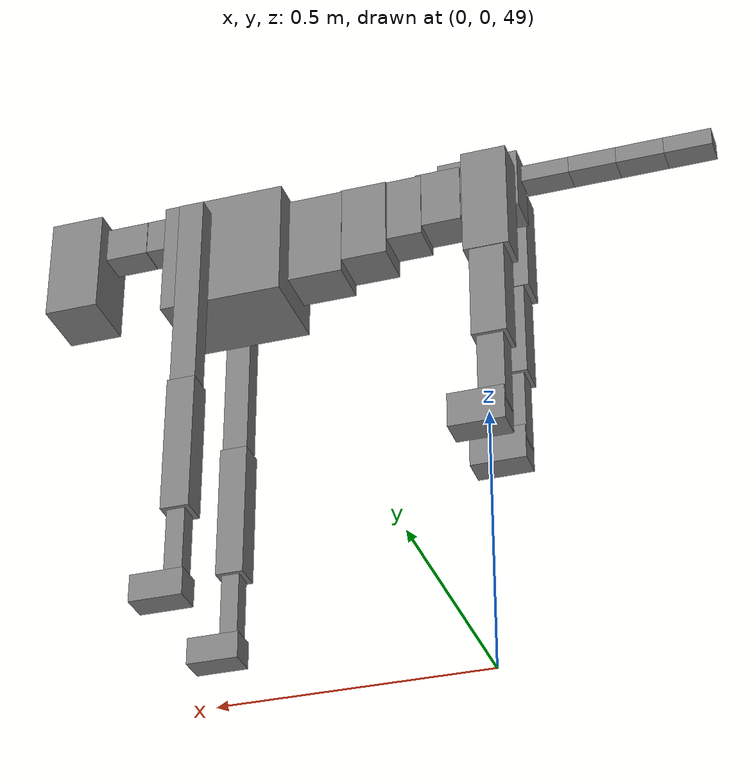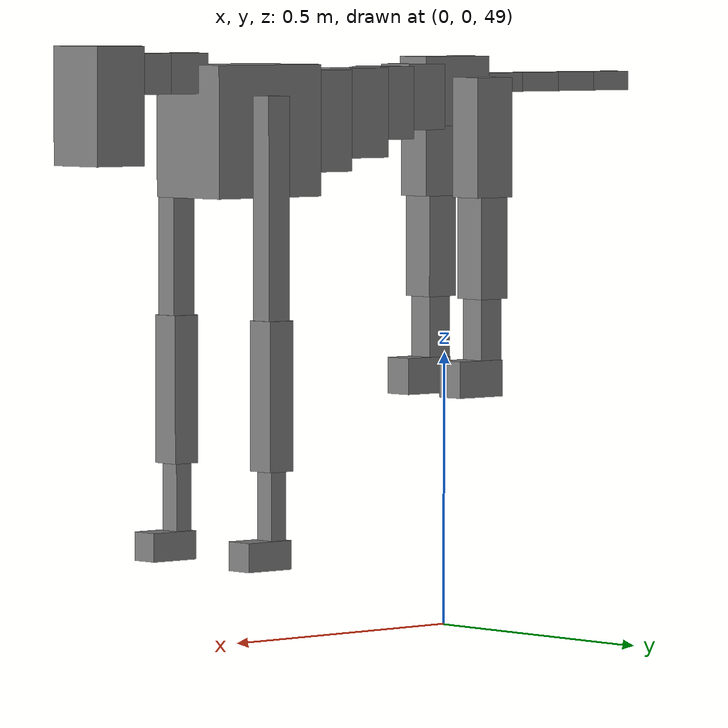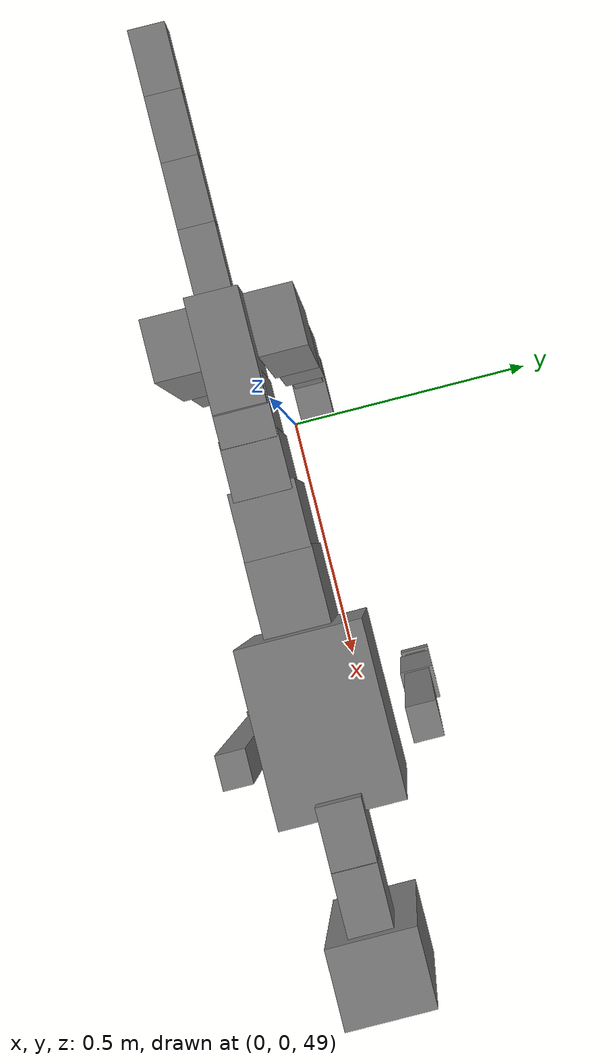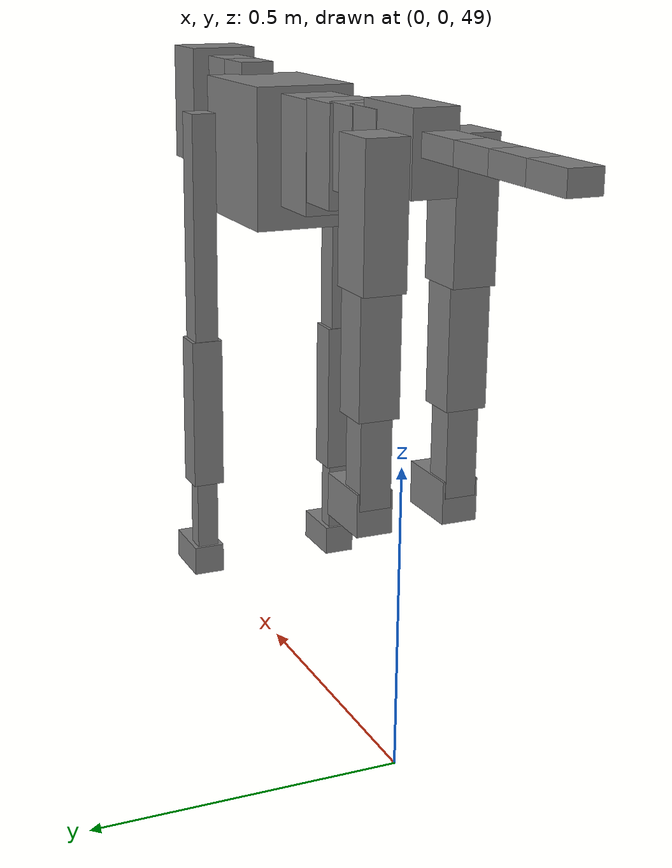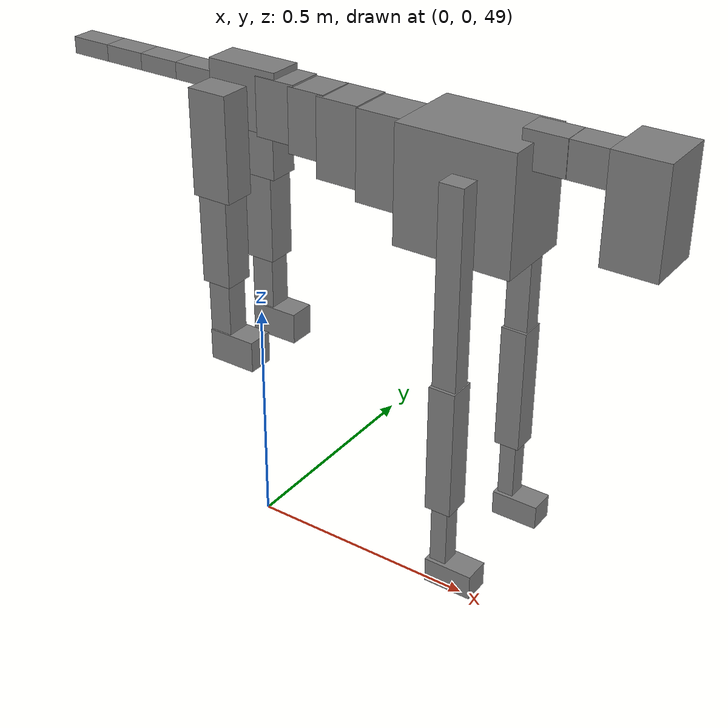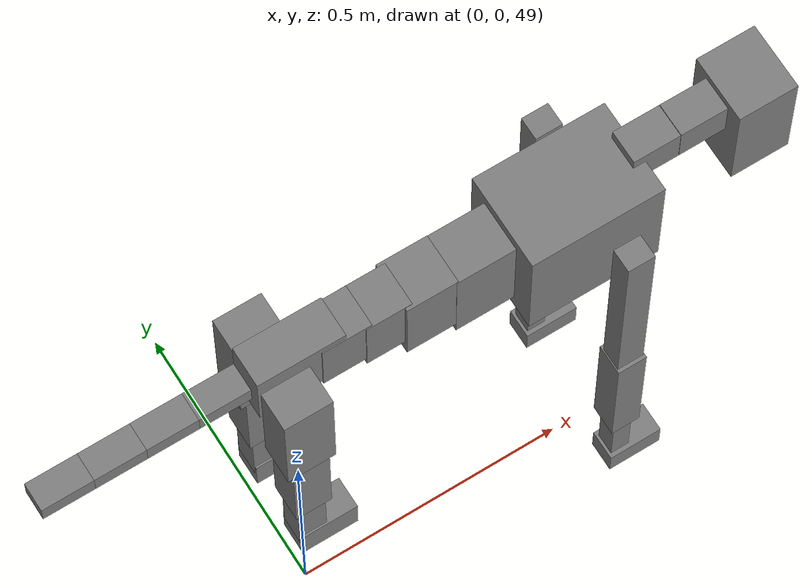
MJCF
<mujoco model="dog">

    <default>
        <joint armature="0.02" stiffness="1" damping="0.2" limited="true"/>
        <geom condim="3" friction="1 0.05 0.05" margin="0.01"/>
        <motor ctrllimited="true" ctrlrange="-1.0 1.0" forcelimited="true" gear="50"/>
    </default>

    <compiler inertiafromgeom="true" angle="radian"/>

    <option timestep="0.016" iterations="50" tolerance="1e-10" solver="Newton" jacobian="dense" cone="pyramidal"/>

    <size nconmax="20000" njmax="60000" nstack="5000000"/>
    <visual>
        <map force="0.1" zfar="30"/>
        <rgba haze="0.15 0.25 0.35 1"/>
        <quality shadowsize="2048"/>
        <global offwidth="800" offheight="800"/>
    </visual>

    <asset>
        <texture type="skybox" builtin="gradient" rgb1="0.3 0.5 0.7" rgb2="0 0 0" width="512" height="512"/>
        <texture name="texplane" type="2d" builtin="checker" rgb1=".2 .3 .4" rgb2=".1 0.15 0.2" width="512" height="512"
                 mark="cross" markrgb=".8 .8 .8"/>
        <texture name="texgeom" type="cube" builtin="flat" mark="cross" width="127" height="1278" rgb1="0.8 0.6 0.4"
                 rgb2="0.8 0.6 0.4" markrgb="1 1 1" random="0.01"/>

        <material name="matplane" reflectance="0.3" texture="texplane" texrepeat="1 1" texuniform="true"/>
        <material name="matgeom" texture="texgeom" texuniform="true" rgba="0.8 0.6 .4 1"/>
    </asset>

    <worldbody>
        <geom name="floor" pos="0 0 0" size="0 0 .25" type="plane" material="matplane" condim="3"/>

        <light directional="false" diffuse=".2 .2 .2" specular="0 0 0" pos="0 0 5" dir="0 0 -1" castshadow="false"/>
        <light mode="targetbodycom" target="torso" directional="false" diffuse=".8 .8 .8" specular="0.3 0.3 0.3"
               pos="0 0 4.0" dir="0 0 -1"/>

        <body name="root" pos="0 0 50">
            <freejoint name="root_1"/>
            <geom type="box" pos="0 0 -0.02" size="0.0774  0.0358  0.063" density="2030"/>

            <body name="spine1" pos="0.054 0 0">
                <joint name="spine1_y" axis="0 1 0" range="0 0.7" limited="true"/>
                <geom type="box" pos="0.02375 0 -0.03" size="0.04375  0.0375  0.05985" density="2030"/>

                <body name="spine2" pos="0.0612 0 0">
                    <joint name="spine2_y" axis="0 1 0" range="-0.15 0.15" limited="true"/>
                    <geom type="box" pos="0.03555  0  -0.04" size="0.04055  0.039  0.06615" density="2030"/>

                    <body name="spine3" pos="0.0730 0 0">
                        <joint name="spine3_y" axis="0 1 0" range="-0.15 0.15" limited="true"/>
                        <geom type="box" pos="0.03555  0  -0.057" size="0.04555  0.0445  0.081" density="2030"/>

                        <body name="spine4" pos="0.0780 0 0">
                            <joint name="spine4_y" axis="0 1 0" range="-0.15 0.15" limited="true"/>
                            <geom type="box" pos="0.05265  0  -0.07" size="0.05265  0.045  0.09135" density="2030"/>

                            <body name="torso" pos="0.1082 0 0">
                                <joint name="torso_y" axis="0 1 0" range="-0.15 0.15" limited="true"/>
                                <geom type="box" pos="0.11925  0  -0.085" size="0.11925  0.085  0.11745"
                                      density="2030"/>

                                <body name="neck1" pos="0.2160  0   0.0180">
                                    <joint name="neck1_y" axis="0 1 0" range="-1.2  -1" limited="true"/>
                                    <geom type="box" pos="0.0423  0  0" size="0.0423  0.03  0.036" density="2325"/>

                                    <body name="neck2" pos="0.0853  0  0">
                                        <joint name="neck2_y" axis="0 1 0" range="0.1  0" limited="true"/>
                                        <geom type="box" pos="0.0423  0  0" size="0.0423  0.03  0.036" density="2325"/>

                                        <body name="head" pos="0.0853  0  0">
                                            <joint name="head_y" axis="0 1 0" range="-0.3  -0.2" limited="true"/>
                                            <geom type="box" pos="0.0531  0  -0.055" size="0.0531  0.06  0.1044"
                                                  density="4030"/>

                                        </body>
                                    </body>
                                </body>

                                <body name="front_shoulder" pos="0.156  0   -0.0480">
                                    <joint name="front_shoulder_y" axis="0 1 0" range="-1 1.5" limited="true"/>
                                    <geom type="box" pos="0 0.13 -0.1842" size="0.0244  0.0209  0.2109" density="1158"/>
                                    <geom type="box" pos="0 -0.13 -0.1842" size="0.0244  0.0209  0.2109"
                                          density="1158"/>

                                    <body name="front_elbow" pos="0  0  -0.3684">
                                        <joint name="front_elbow_y" axis="0 1 0" range="-2 0" limited="true"/>
                                        <geom type="box" pos="0 0.13 -0.1329" size="0.0267  0.0273  0.1329"
                                              density="1081"/>
                                        <geom type="box" pos="0 -0.13 -0.1329" size="0.0267  0.0273  0.1329"
                                              density="1081"/>

                                        <body name="front_wrist" pos="0  0  -0.2658">
                                            <joint name="front_wrist_y" axis="0 1 0" range="-0.2 0" limited="true"/>
                                            <geom type="box" pos="0 0.13 -0.0682" size="0.0171  0.0190  0.0814"
                                                  density="1664"/>
                                            <geom type="box" pos="0 -0.13 -0.0682" size="0.0171  0.0190  0.0814"
                                                  density="1664"/>

                                            <body name="front_finger_end" pos="0  0  -0.1365">
                                                <joint name="front_finger_y" axis="0 1 0" range="-0.4 1"
                                                       limited="true"/>
                                                <geom type="box" pos="0.0270  0.13  -0.0108"
                                                      size="0.0494  0.0270  0.0258" density="1515"/>
                                                <geom type="box" pos="0.0270  -0.13  -0.0108"
                                                      size="0.0494  0.0270  0.0258" density="1515"/>

                                            </body>

                                        </body>
                                    </body>
                                </body>

                            </body>
                        </body>
                    </body>
                </body>
            </body>

            <body name="back_hip" pos="-0.03 0 -0.018">
                <joint name="back_hip_y" axis="0 1 0" range="-1.5 0.3" limited="true"/>
                <geom type="box" pos="0 0.07 -0.0866" size="0.0429  0.0336  0.1094" density="1154"/>
                <geom type="box" pos="0 -0.07 -0.0866" size="0.0429  0.0336  0.1094" density="1154"/>

                <body name="back_knee" pos="0  0  -0.1733">
                    <joint name="back_knee_y" axis="0 1 0" range="0 2.8" limited="true"/>
                    <geom type="box" pos="0 0.07 -0.0961" size="0.0325  0.0320  0.1117" density="1227"/>
                    <geom type="box" pos="0 -0.07 -0.0961" size="0.0325  0.0320  0.1117" density="1227"/>

                    <body name="back_ankle" pos="0  0  -0.1923">
                        <joint name="back_ankle_y" axis="0 1 0" range="-2.2 0" limited="true"/>
                        <geom type="box" pos="0 0.07 -0.0710" size="0.0248  0.0248  0.0823" density="1284"/>
                        <geom type="box" pos="0 -0.07 -0.0710" size="0.0248  0.0248  0.0823" density="1284"/>

                        <body name="back_toe_end" pos="0  0  -0.1420">
                            <joint name="back_toe_y" axis="0 1 0" range="-0.4 1" limited="true"/>
                            <geom type="box" pos="0.0284  0.07  -0.0184" size="0.0521  0.0284  0.0334" density="1515"/>
                            <geom type="box" pos="0.0284  -0.07  -0.0184" size="0.0521  0.0284  0.0334" density="1515"/>

                        </body>
                    </body>
                </body>
            </body>

            <body name="tail1" pos="-0.074 0 -0.006">
                <joint name="tail1_y" axis="0 1 0" range="-0.2 0.2" limited="true"/>
                <geom type="box" pos="-0.0536  0  0" size="0.045  0.025  0.0175" density="1587"/>

                <body name="tail2" pos="-0.09 0 0">
                    <joint name="tail2_y" axis="0 1 0" range="-0.2 0.2" limited="true"/>
                    <geom type="box" pos="-0.0536  0  0" size="0.045  0.025  0.0175" density="1587"/>

                    <body name="tail3" pos="-0.09 0 0">
                        <joint name="tail3_y" axis="0 1 0" range="-0.2 0.2" limited="true"/>
                        <geom type="box" pos="-0.0536  0  0" size="0.045  0.025  0.0175" density="1587"/>

                        <body name="tail4" pos="-0.09 0 0">
                            <joint name="tail4_y" axis="0 1 0" range="-0.2 0.2" limited="true"/>
                            <geom type="box" pos="-0.0536  0  0" size="0.045  0.025  0.0175" density="1587"/>

                        </body>
                    </body>
                </body>
            </body>
        </body>
    </worldbody>

    <actuator>
        <motor joint="spine1_y" forcerange="-150 150     "/>
        <motor joint="spine2_y" forcerange="-150 150     "/>
        <motor joint="spine3_y" forcerange="-150 150     "/>
        <motor joint="spine4_y" forcerange="-150 150     "/>
        <motor joint="torso_y" forcerange="-150 150     "/>
        <motor joint="neck1_y" forcerange="-100 100       "/>
        <motor joint="neck2_y" forcerange="-100 100       "/>
        <motor joint="head_y" forcerange="-150 150       "/>
        <motor joint="front_shoulder_y" forcerange="-101.14 137.93"/>
        <motor joint="front_elbow_y" forcerange="-179.84 118.64"/>
        <motor joint="front_wrist_y" forcerange="-78.03 74.09"/>
        <motor joint="front_finger_y" forcerange="-46.46 57.30"/>
        <motor joint="back_hip_y" forcerange="-250.17 398.28"/>
        <motor joint="back_knee_y" forcerange="-311.97 353.83"/>
        <motor joint="back_angle_y" forcerange="-134.72 161.75"/>
        <motor joint="back_toe_y" forcerange="-112.38 35.14"/>
        <motor joint="tail1_y" forcerange="-50 50     "/>
        <motor joint="tail2_y" forcerange="-50 50     "/>
        <motor joint="tail3_y" forcerange="-50 50     "/>
        <motor joint="tail4_y" forcerange="-50 50     "/>
    </actuator>
</mujoco>
